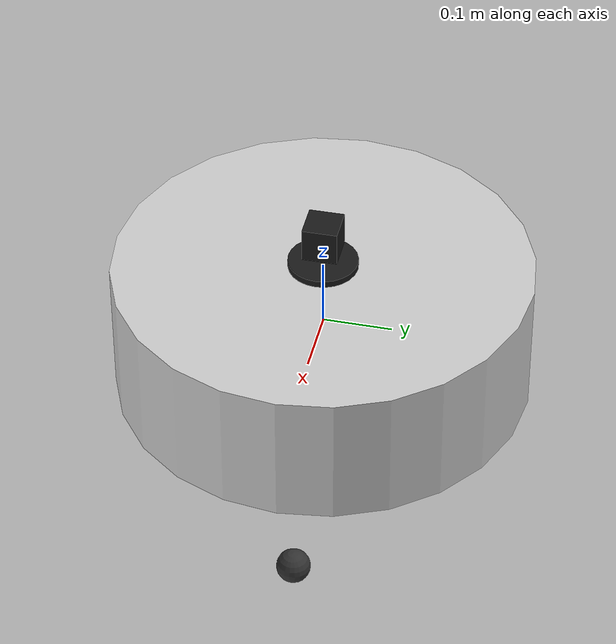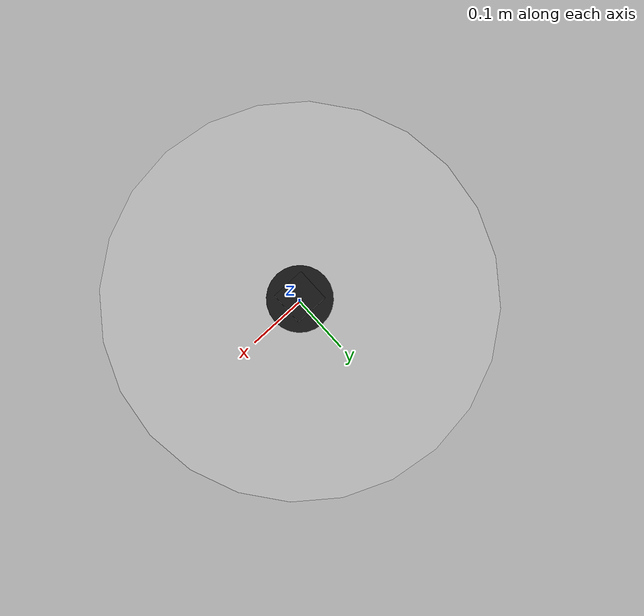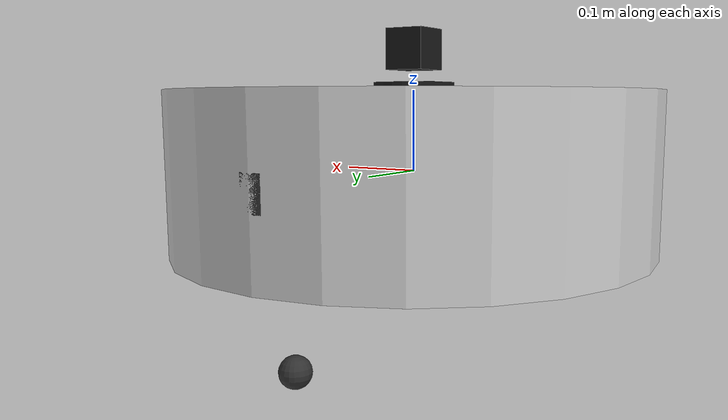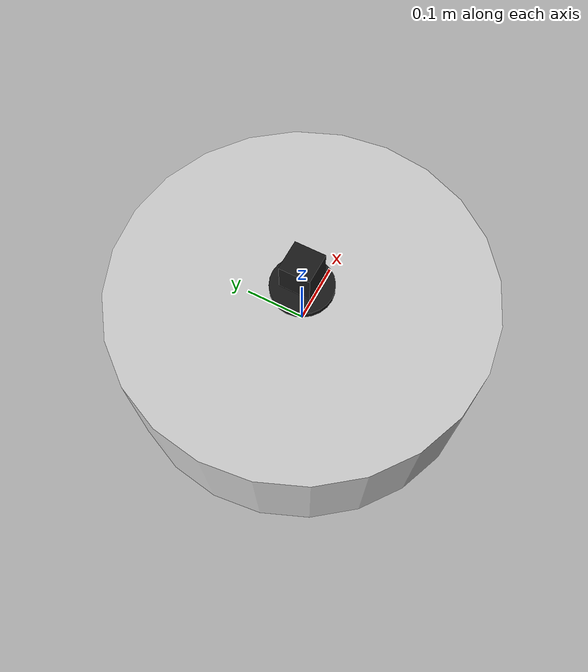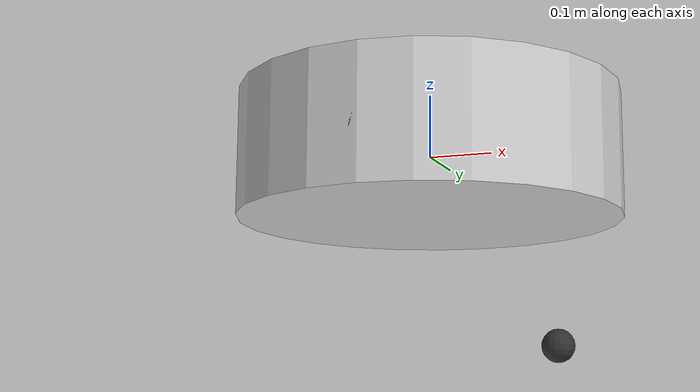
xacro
<?xml version="1.0"?>
<robot xmlns:xacro="http://www.ros.org/wiki/xacro" name="swarm_robot">

  <!-- Robot properties -->
  <xacro:property name="robot_radius" value="0.3"/>
  <xacro:property name="robot_height" value="0.2"/>
  <xacro:property name="wheel_radius" value="0.05"/>
  <xacro:property name="wheel_width" value="0.04"/>
  <xacro:property name="wheel_ygap" value="0.25"/>
  <xacro:property name="wheel_xgap" value="0.2"/>

  <!-- Base link -->
  <link name="base_link">
    <visual>
      <geometry>
        <cylinder radius="${robot_radius}" length="${robot_height}"/>
      </geometry>
      <material name="robot_material">
        <color rgba="0.8 0.8 0.8 1"/>
      </material>
    </visual>
    <collision>
      <geometry>
        <cylinder radius="${robot_radius}" length="${robot_height}"/>
      </geometry>
    </collision>
    <inertial>
      <mass value="1.0"/>
      <inertia ixx="0.1" ixy="0" ixz="0" iyy="0.1" iyz="0" izz="0.1"/>
    </inertial>
  </link>

  <!-- Left wheel -->
  <link name="left_wheel">
    <visual>
      <geometry>
        <cylinder radius="${wheel_radius}" length="${wheel_width}"/>
      </geometry>
      <material name="wheel_material">
        <color rgba="0.2 0.2 0.2 1"/>
      </material>
    </visual>
    <collision>
      <geometry>
        <cylinder radius="${wheel_radius}" length="${wheel_width}"/>
      </geometry>
    </collision>
    <inertial>
      <mass value="0.1"/>
      <inertia ixx="0.001" ixy="0" ixz="0" iyy="0.001" iyz="0" izz="0.001"/>
    </inertial>
  </link>

  <!-- Right wheel -->
  <link name="right_wheel">
    <visual>
      <geometry>
        <cylinder radius="${wheel_radius}" length="${wheel_width}"/>
      </geometry>
      <material name="wheel_material"/>
    </visual>
    <collision>
      <geometry>
        <cylinder radius="${wheel_radius}" length="${wheel_width}"/>
      </geometry>
    </collision>
    <inertial>
      <mass value="0.1"/>
      <inertia ixx="0.001" ixy="0" ixz="0" iyy="0.001" iyz="0" izz="0.001"/>
    </inertial>
  </link>

  <!-- Caster wheel -->
  <link name="caster_wheel">
    <visual>
      <geometry>
        <sphere radius="${wheel_radius/2}"/>
      </geometry>
      <material name="wheel_material"/>
    </visual>
    <collision>
      <geometry>
        <sphere radius="${wheel_radius/2}"/>
      </geometry>
    </collision>
    <inertial>
      <mass value="0.05"/>
      <inertia ixx="0.0001" ixy="0" ixz="0" iyy="0.0001" iyz="0" izz="0.0001"/>
    </inertial>
  </link>

  <!-- Laser scanner -->
  <link name="laser_link">
    <visual>
      <geometry>
        <cylinder radius="0.05" length="0.02"/>
      </geometry>
      <material name="sensor_material">
        <color rgba="0.1 0.1 0.1 1"/>
      </material>
    </visual>
    <collision>
      <geometry>
        <cylinder radius="0.05" length="0.02"/>
      </geometry>
    </collision>
    <inertial>
      <mass value="0.01"/>
      <inertia ixx="0.00001" ixy="0" ixz="0" iyy="0.00001" iyz="0" izz="0.00001"/>
    </inertial>
  </link>

  <!-- Camera link -->
  <link name="camera_link">
    <visual>
      <geometry>
        <box size="0.05 0.05 0.05"/>
      </geometry>
      <material name="sensor_material"/>
    </visual>
    <collision>
      <geometry>
        <box size="0.05 0.05 0.05"/>
      </geometry>
    </collision>
    <inertial>
      <mass value="0.01"/>
      <inertia ixx="0.00001" ixy="0" ixz="0" iyy="0.00001" iyz="0" izz="0.00001"/>
    </inertial>
  </link>

  <!-- Joints -->
  <joint name="left_wheel_joint" type="continuous">
    <parent link="base_link"/>
    <child link="left_wheel"/>
    <origin xyz="0 ${wheel_ygap} 0" rpy="0 0 0"/>
    <axis xyz="0 0 1"/>
  </joint>

  <joint name="right_wheel_joint" type="continuous">
    <parent link="base_link"/>
    <child link="right_wheel"/>
    <origin xyz="0 -${wheel_ygap} 0" rpy="0 0 0"/>
    <axis xyz="0 0 1"/>
  </joint>

  <joint name="caster_wheel_joint" type="fixed">
    <parent link="base_link"/>
    <child link="caster_wheel"/>
    <origin xyz="${wheel_xgap} 0 -${robot_radius}" rpy="0 0 0"/>
  </joint>

  <joint name="laser_joint" type="fixed">
    <parent link="base_link"/>
    <child link="laser_link"/>
    <origin xyz="0 0 ${robot_height/2}" rpy="0 0 0"/>
  </joint>

  <joint name="camera_joint" type="fixed">
    <parent link="base_link"/>
    <child link="camera_link"/>
    <origin xyz="0 0 ${robot_height/2 + 0.05}" rpy="0 0 0"/>
  </joint>

  <!-- Gazebo plugins -->
  <gazebo>
    <plugin name="gazebo_ros_control" filename="libgazebo_ros_control.so">
      <robotNamespace>/</robotNamespace>
    </plugin>
  </gazebo>

  <!-- Differential drive controller -->
  <gazebo>
    <plugin name="differential_drive_controller" filename="libgazebo_ros_diff_drive.so">
      <robotNamespace>/</robotNamespace>
      <leftJoint>left_wheel_joint</leftJoint>
      <rightJoint>right_wheel_joint</rightJoint>
      <wheelSeparation>${wheel_ygap * 2}</wheelSeparation>
      <wheelDiameter>${wheel_radius * 2}</wheelDiameter>
      <maxWheelTorque>20</maxWheelTorque>
      <maxWheelAcceleration>1.0</maxWheelAcceleration>
      <output>odom</output>
      <odometryFrame>odom</odometryFrame>
      <odometrySource>world</odometrySource>
      <publishOdomTF>true</publishOdomTF>
      <publishWheelTF>false</publishWheelTF>
      <publishWheelJointState>true</publishWheelJointState>
      <legacyMode>false</legacyMode>
      <updateRate>30</updateRate>
      <publishRate>30</publishRate>
    </plugin>
  </gazebo>

  <!-- Laser scanner plugin -->
  <gazebo reference="laser_link">
    <sensor type="ray" name="laser_sensor">
      <pose>0 0 0 0 0 0</pose>
      <visualize>true</visualize>
      <update_rate>40</update_rate>
      <ray>
        <scan>
          <horizontal>
            <samples>720</samples>
            <resolution>1</resolution>
            <min_angle>-1.570796</min_angle>
            <max_angle>1.570796</max_angle>
          </horizontal>
        </scan>
        <range>
          <min>0.1</min>
          <max>10.0</max>
          <resolution>0.01</resolution>
        </range>
        <noise>
          <type>gaussian</type>
          <mean>0.0</mean>
          <stddev>0.01</stddev>
        </noise>
      </ray>
      <plugin name="gazebo_ros_head_laser_controller" filename="libgazebo_ros_ray_sensor.so">
        <ros>
          <remapping>scan:=scan</remapping>
        </ros>
        <output_type>sensor_msgs/LaserScan</output_type>
        <frame_name>laser_link</frame_name>
      </plugin>
    </sensor>
  </gazebo>

  <!-- Camera plugin -->
  <gazebo reference="camera_link">
    <sensor type="camera" name="camera_sensor">
      <update_rate>30.0</update_rate>
      <camera name="head">
        <horizontal_fov>1.3962634</horizontal_fov>
        <image>
          <width>640</width>
          <height>480</height>
          <format>R8G8B8</format>
        </image>
        <clip>
          <near>0.02</near>
          <far>300</far>
        </clip>
        <noise>
          <type>gaussian</type>
          <mean>0.0</mean>
          <stddev>0.007</stddev>
        </noise>
      </camera>
      <plugin name="camera_controller" filename="libgazebo_ros_camera.so">
        <alwaysOn>true</alwaysOn>
        <updateRate>0.0</updateRate>
        <cameraName>camera</cameraName>
        <imageTopicName>image_raw</imageTopicName>
        <cameraInfoTopicName>camera_info</cameraInfoTopicName>
        <frameName>camera_link</frameName>
        <minDepth>0.1</minDepth>
        <maxDepth>100.0</maxDepth>
      </plugin>
    </sensor>
  </gazebo>

</robot>
